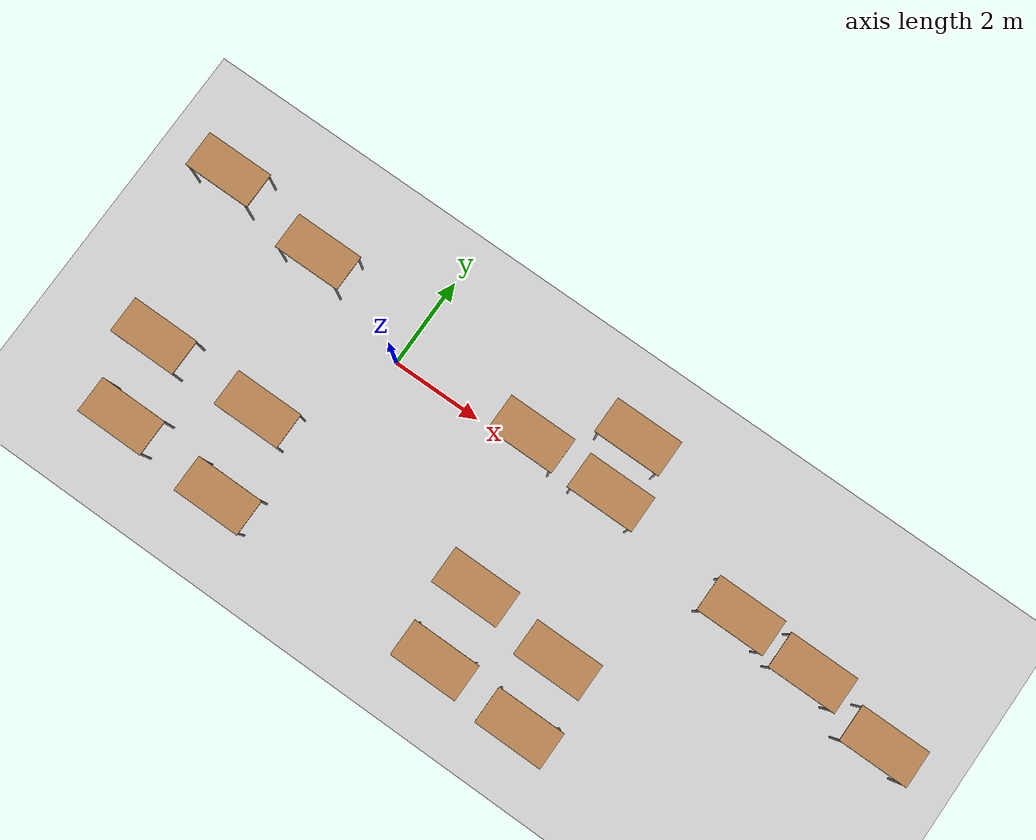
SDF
<sdf version="1.7">
 <world name="default">
  <model name="ground_plane">
   <static>1</static>
   <link name="link">
    <collision name="collision">
     <geometry><plane><normal>0 0 1</normal><size>100 100</size></plane></geometry>
     <surface>
      <contact><collide_bitmask>65535</collide_bitmask></contact>
      <friction><ode><mu>100</mu><mu2>50</mu2></ode></friction>
     </surface>
    </collision>
    <visual name="visual">
     <cast_shadows>0</cast_shadows>
     <geometry><plane><normal>0 0 1</normal><size>100 100</size></plane></geometry>
     <material>
      <script><uri>file://media/materials/scripts/gazebo.material</uri><name>Gazebo/Grey</name></script>
     </material>
    </visual>
   </link>
  </model>
  <model name="table">
   <static>1</static>
   <link name="link">
    <collision name="surface">
     <pose>0 0 1 0 -0 0</pose>
     <geometry><box><size>1.5 0.8 0.03</size></box></geometry>
     <surface><friction><ode><mu>0.6</mu><mu2>0.6</mu2></ode></friction></surface>
    </collision>
    <visual name="visual1">
     <pose>0 0 1 0 -0 0</pose>
     <geometry><box><size>1.5 0.8 0.03</size></box></geometry>
     <material>
      <script><uri>file://media/materials/scripts/gazebo.material</uri><name>Gazebo/Wood</name></script>
     </material>
    </visual>
    <collision name="front_left_leg">
     <pose>0.68 0.38 0.5 0 -0 0</pose>
     <geometry><cylinder><radius>0.02</radius><length>1</length></cylinder></geometry>
    </collision>
    <visual name="front_left_leg">
     <pose>0.68 0.38 0.5 0 -0 0</pose>
     <geometry><cylinder><radius>0.02</radius><length>1</length></cylinder></geometry>
     <material>
      <script><uri>file://media/materials/scripts/gazebo.material</uri><name>Gazebo/Grey</name></script>
     </material>
    </visual>
    <collision name="front_right_leg">
     <pose>0.68 -0.38 0.5 0 -0 0</pose>
     <geometry><cylinder><radius>0.02</radius><length>1</length></cylinder></geometry>
    </collision>
    <visual name="front_right_leg">
     <pose>0.68 -0.38 0.5 0 -0 0</pose>
     <geometry><cylinder><radius>0.02</radius><length>1</length></cylinder></geometry>
     <material>
      <script><uri>file://media/materials/scripts/gazebo.material</uri><name>Gazebo/Grey</name></script>
     </material>
    </visual>
    <collision name="back_right_leg">
     <pose>-0.68 -0.38 0.5 0 -0 0</pose>
     <geometry><cylinder><radius>0.02</radius><length>1</length></cylinder></geometry>
    </collision>
    <visual name="back_right_leg">
     <pose>-0.68 -0.38 0.5 0 -0 0</pose>
     <geometry><cylinder><radius>0.02</radius><length>1</length></cylinder></geometry>
     <material>
      <script><uri>file://media/materials/scripts/gazebo.material</uri><name>Gazebo/Grey</name></script>
     </material>
    </visual>
    <collision name="back_left_leg">
     <pose>-0.68 0.38 0.5 0 -0 0</pose>
     <geometry><cylinder><radius>0.02</radius><length>1</length></cylinder></geometry>
    </collision>
    <visual name="back_left_leg">
     <pose>-0.68 0.38 0.5 0 -0 0</pose>
     <geometry><cylinder><radius>0.02</radius><length>1</length></cylinder></geometry>
     <material>
      <script><uri>file://media/materials/scripts/gazebo.material</uri><name>Gazebo/Grey</name></script>
     </material>
    </visual>
   </link>
   <pose>3.92211 -2.73717 0 0 -0 0</pose>
  </model>
  <model name="table_clone">
   <static>1</static>
   <link name="link">
    <collision name="surface">
     <pose>0 0 1 0 -0 0</pose>
     <geometry><box><size>1.5 0.8 0.03</size></box></geometry>
     <surface><friction><ode><mu>0.6</mu><mu2>0.6</mu2></ode></friction></surface>
    </collision>
    <visual name="visual1">
     <pose>0 0 1 0 -0 0</pose>
     <geometry><box><size>1.5 0.8 0.03</size></box></geometry>
     <material>
      <script><uri>file://media/materials/scripts/gazebo.material</uri><name>Gazebo/Wood</name></script>
     </material>
    </visual>
    <collision name="front_left_leg">
     <pose>0.68 0.38 0.5 0 -0 0</pose>
     <geometry><cylinder><radius>0.02</radius><length>1</length></cylinder></geometry>
    </collision>
    <visual name="front_left_leg">
     <pose>0.68 0.38 0.5 0 -0 0</pose>
     <geometry><cylinder><radius>0.02</radius><length>1</length></cylinder></geometry>
     <material>
      <script><uri>file://media/materials/scripts/gazebo.material</uri><name>Gazebo/Grey</name></script>
     </material>
    </visual>
    <collision name="front_right_leg">
     <pose>0.68 -0.38 0.5 0 -0 0</pose>
     <geometry><cylinder><radius>0.02</radius><length>1</length></cylinder></geometry>
    </collision>
    <visual name="front_right_leg">
     <pose>0.68 -0.38 0.5 0 -0 0</pose>
     <geometry><cylinder><radius>0.02</radius><length>1</length></cylinder></geometry>
     <material>
      <script><uri>file://media/materials/scripts/gazebo.material</uri><name>Gazebo/Grey</name></script>
     </material>
    </visual>
    <collision name="back_right_leg">
     <pose>-0.68 -0.38 0.5 0 -0 0</pose>
     <geometry><cylinder><radius>0.02</radius><length>1</length></cylinder></geometry>
    </collision>
    <visual name="back_right_leg">
     <pose>-0.68 -0.38 0.5 0 -0 0</pose>
     <geometry><cylinder><radius>0.02</radius><length>1</length></cylinder></geometry>
     <material>
      <script><uri>file://media/materials/scripts/gazebo.material</uri><name>Gazebo/Grey</name></script>
     </material>
    </visual>
    <collision name="back_left_leg">
     <pose>-0.68 0.38 0.5 0 -0 0</pose>
     <geometry><cylinder><radius>0.02</radius><length>1</length></cylinder></geometry>
    </collision>
    <visual name="back_left_leg">
     <pose>-0.68 0.38 0.5 0 -0 0</pose>
     <geometry><cylinder><radius>0.02</radius><length>1</length></cylinder></geometry>
     <material>
      <script><uri>file://media/materials/scripts/gazebo.material</uri><name>Gazebo/Grey</name></script>
     </material>
    </visual>
   </link>
   <pose>5.97577 -2.95119 0 0 -0 0</pose>
  </model>
  <model name="table_clone_1">
   <static>1</static>
   <link name="link">
    <collision name="surface">
     <pose>0 0 1 0 -0 0</pose>
     <geometry><box><size>1.5 0.8 0.03</size></box></geometry>
     <surface><friction><ode><mu>0.6</mu><mu2>0.6</mu2></ode></friction></surface>
    </collision>
    <visual name="visual1">
     <pose>0 0 1 0 -0 0</pose>
     <geometry><box><size>1.5 0.8 0.03</size></box></geometry>
     <material>
      <script><uri>file://media/materials/scripts/gazebo.material</uri><name>Gazebo/Wood</name></script>
     </material>
    </visual>
    <collision name="front_left_leg">
     <pose>0.68 0.38 0.5 0 -0 0</pose>
     <geometry><cylinder><radius>0.02</radius><length>1</length></cylinder></geometry>
    </collision>
    <visual name="front_left_leg">
     <pose>0.68 0.38 0.5 0 -0 0</pose>
     <geometry><cylinder><radius>0.02</radius><length>1</length></cylinder></geometry>
     <material>
      <script><uri>file://media/materials/scripts/gazebo.material</uri><name>Gazebo/Grey</name></script>
     </material>
    </visual>
    <collision name="front_right_leg">
     <pose>0.68 -0.38 0.5 0 -0 0</pose>
     <geometry><cylinder><radius>0.02</radius><length>1</length></cylinder></geometry>
    </collision>
    <visual name="front_right_leg">
     <pose>0.68 -0.38 0.5 0 -0 0</pose>
     <geometry><cylinder><radius>0.02</radius><length>1</length></cylinder></geometry>
     <material>
      <script><uri>file://media/materials/scripts/gazebo.material</uri><name>Gazebo/Grey</name></script>
     </material>
    </visual>
    <collision name="back_right_leg">
     <pose>-0.68 -0.38 0.5 0 -0 0</pose>
     <geometry><cylinder><radius>0.02</radius><length>1</length></cylinder></geometry>
    </collision>
    <visual name="back_right_leg">
     <pose>-0.68 -0.38 0.5 0 -0 0</pose>
     <geometry><cylinder><radius>0.02</radius><length>1</length></cylinder></geometry>
     <material>
      <script><uri>file://media/materials/scripts/gazebo.material</uri><name>Gazebo/Grey</name></script>
     </material>
    </visual>
    <collision name="back_left_leg">
     <pose>-0.68 0.38 0.5 0 -0 0</pose>
     <geometry><cylinder><radius>0.02</radius><length>1</length></cylinder></geometry>
    </collision>
    <visual name="back_left_leg">
     <pose>-0.68 0.38 0.5 0 -0 0</pose>
     <geometry><cylinder><radius>0.02</radius><length>1</length></cylinder></geometry>
     <material>
      <script><uri>file://media/materials/scripts/gazebo.material</uri><name>Gazebo/Grey</name></script>
     </material>
    </visual>
   </link>
   <pose>6.11176 -4.39792 0 0 -0 0</pose>
  </model>
  <model name="table_clone_2">
   <static>1</static>
   <link name="link">
    <collision name="surface">
     <pose>0 0 1 0 -0 0</pose>
     <geometry><box><size>1.5 0.8 0.03</size></box></geometry>
     <surface><friction><ode><mu>0.6</mu><mu2>0.6</mu2></ode></friction></surface>
    </collision>
    <visual name="visual1">
     <pose>0 0 1 0 -0 0</pose>
     <geometry><box><size>1.5 0.8 0.03</size></box></geometry>
     <material>
      <script><uri>file://media/materials/scripts/gazebo.material</uri><name>Gazebo/Wood</name></script>
     </material>
    </visual>
    <collision name="front_left_leg">
     <pose>0.68 0.38 0.5 0 -0 0</pose>
     <geometry><cylinder><radius>0.02</radius><length>1</length></cylinder></geometry>
    </collision>
    <visual name="front_left_leg">
     <pose>0.68 0.38 0.5 0 -0 0</pose>
     <geometry><cylinder><radius>0.02</radius><length>1</length></cylinder></geometry>
     <material>
      <script><uri>file://media/materials/scripts/gazebo.material</uri><name>Gazebo/Grey</name></script>
     </material>
    </visual>
    <collision name="front_right_leg">
     <pose>0.68 -0.38 0.5 0 -0 0</pose>
     <geometry><cylinder><radius>0.02</radius><length>1</length></cylinder></geometry>
    </collision>
    <visual name="front_right_leg">
     <pose>0.68 -0.38 0.5 0 -0 0</pose>
     <geometry><cylinder><radius>0.02</radius><length>1</length></cylinder></geometry>
     <material>
      <script><uri>file://media/materials/scripts/gazebo.material</uri><name>Gazebo/Grey</name></script>
     </material>
    </visual>
    <collision name="back_right_leg">
     <pose>-0.68 -0.38 0.5 0 -0 0</pose>
     <geometry><cylinder><radius>0.02</radius><length>1</length></cylinder></geometry>
    </collision>
    <visual name="back_right_leg">
     <pose>-0.68 -0.38 0.5 0 -0 0</pose>
     <geometry><cylinder><radius>0.02</radius><length>1</length></cylinder></geometry>
     <material>
      <script><uri>file://media/materials/scripts/gazebo.material</uri><name>Gazebo/Grey</name></script>
     </material>
    </visual>
    <collision name="back_left_leg">
     <pose>-0.68 0.38 0.5 0 -0 0</pose>
     <geometry><cylinder><radius>0.02</radius><length>1</length></cylinder></geometry>
    </collision>
    <visual name="back_left_leg">
     <pose>-0.68 0.38 0.5 0 -0 0</pose>
     <geometry><cylinder><radius>0.02</radius><length>1</length></cylinder></geometry>
     <material>
      <script><uri>file://media/materials/scripts/gazebo.material</uri><name>Gazebo/Grey</name></script>
     </material>
    </visual>
   </link>
   <pose>-1.48 -2.39226 0 0 -0 0</pose>
  </model>
  <model name="table_clone_3">
   <static>1</static>
   <link name="link">
    <collision name="surface">
     <pose>0 0 1 0 -0 0</pose>
     <geometry><box><size>1.5 0.8 0.03</size></box></geometry>
     <surface><friction><ode><mu>0.6</mu><mu2>0.6</mu2></ode></friction></surface>
    </collision>
    <visual name="visual1">
     <pose>0 0 1 0 -0 0</pose>
     <geometry><box><size>1.5 0.8 0.03</size></box></geometry>
     <material>
      <script><uri>file://media/materials/scripts/gazebo.material</uri><name>Gazebo/Wood</name></script>
     </material>
    </visual>
    <collision name="front_left_leg">
     <pose>0.68 0.38 0.5 0 -0 0</pose>
     <geometry><cylinder><radius>0.02</radius><length>1</length></cylinder></geometry>
    </collision>
    <visual name="front_left_leg">
     <pose>0.68 0.38 0.5 0 -0 0</pose>
     <geometry><cylinder><radius>0.02</radius><length>1</length></cylinder></geometry>
     <material>
      <script><uri>file://media/materials/scripts/gazebo.material</uri><name>Gazebo/Grey</name></script>
     </material>
    </visual>
    <collision name="front_right_leg">
     <pose>0.68 -0.38 0.5 0 -0 0</pose>
     <geometry><cylinder><radius>0.02</radius><length>1</length></cylinder></geometry>
    </collision>
    <visual name="front_right_leg">
     <pose>0.68 -0.38 0.5 0 -0 0</pose>
     <geometry><cylinder><radius>0.02</radius><length>1</length></cylinder></geometry>
     <material>
      <script><uri>file://media/materials/scripts/gazebo.material</uri><name>Gazebo/Grey</name></script>
     </material>
    </visual>
    <collision name="back_right_leg">
     <pose>-0.68 -0.38 0.5 0 -0 0</pose>
     <geometry><cylinder><radius>0.02</radius><length>1</length></cylinder></geometry>
    </collision>
    <visual name="back_right_leg">
     <pose>-0.68 -0.38 0.5 0 -0 0</pose>
     <geometry><cylinder><radius>0.02</radius><length>1</length></cylinder></geometry>
     <material>
      <script><uri>file://media/materials/scripts/gazebo.material</uri><name>Gazebo/Grey</name></script>
     </material>
    </visual>
    <collision name="back_left_leg">
     <pose>-0.68 0.38 0.5 0 -0 0</pose>
     <geometry><cylinder><radius>0.02</radius><length>1</length></cylinder></geometry>
    </collision>
    <visual name="back_left_leg">
     <pose>-0.68 0.38 0.5 0 -0 0</pose>
     <geometry><cylinder><radius>0.02</radius><length>1</length></cylinder></geometry>
     <material>
      <script><uri>file://media/materials/scripts/gazebo.material</uri><name>Gazebo/Grey</name></script>
     </material>
    </visual>
   </link>
   <pose>-3.97626 -2.40472 0 0 -0 0</pose>
  </model>
  <model name="table_clone_4">
   <static>1</static>
   <link name="link">
    <collision name="surface">
     <pose>0 0 1 0 -0 0</pose>
     <geometry><box><size>1.5 0.8 0.03</size></box></geometry>
     <surface><friction><ode><mu>0.6</mu><mu2>0.6</mu2></ode></friction></surface>
    </collision>
    <visual name="visual1">
     <pose>0 0 1 0 -0 0</pose>
     <geometry><box><size>1.5 0.8 0.03</size></box></geometry>
     <material>
      <script><uri>file://media/materials/scripts/gazebo.material</uri><name>Gazebo/Wood</name></script>
     </material>
    </visual>
    <collision name="front_left_leg">
     <pose>0.68 0.38 0.5 0 -0 0</pose>
     <geometry><cylinder><radius>0.02</radius><length>1</length></cylinder></geometry>
    </collision>
    <visual name="front_left_leg">
     <pose>0.68 0.38 0.5 0 -0 0</pose>
     <geometry><cylinder><radius>0.02</radius><length>1</length></cylinder></geometry>
     <material>
      <script><uri>file://media/materials/scripts/gazebo.material</uri><name>Gazebo/Grey</name></script>
     </material>
    </visual>
    <collision name="front_right_leg">
     <pose>0.68 -0.38 0.5 0 -0 0</pose>
     <geometry><cylinder><radius>0.02</radius><length>1</length></cylinder></geometry>
    </collision>
    <visual name="front_right_leg">
     <pose>0.68 -0.38 0.5 0 -0 0</pose>
     <geometry><cylinder><radius>0.02</radius><length>1</length></cylinder></geometry>
     <material>
      <script><uri>file://media/materials/scripts/gazebo.material</uri><name>Gazebo/Grey</name></script>
     </material>
    </visual>
    <collision name="back_right_leg">
     <pose>-0.68 -0.38 0.5 0 -0 0</pose>
     <geometry><cylinder><radius>0.02</radius><length>1</length></cylinder></geometry>
    </collision>
    <visual name="back_right_leg">
     <pose>-0.68 -0.38 0.5 0 -0 0</pose>
     <geometry><cylinder><radius>0.02</radius><length>1</length></cylinder></geometry>
     <material>
      <script><uri>file://media/materials/scripts/gazebo.material</uri><name>Gazebo/Grey</name></script>
     </material>
    </visual>
    <collision name="back_left_leg">
     <pose>-0.68 0.38 0.5 0 -0 0</pose>
     <geometry><cylinder><radius>0.02</radius><length>1</length></cylinder></geometry>
    </collision>
    <visual name="back_left_leg">
     <pose>-0.68 0.38 0.5 0 -0 0</pose>
     <geometry><cylinder><radius>0.02</radius><length>1</length></cylinder></geometry>
     <material>
      <script><uri>file://media/materials/scripts/gazebo.material</uri><name>Gazebo/Grey</name></script>
     </material>
    </visual>
   </link>
   <pose>-3.53618 -4.01867 0 0 -0 0</pose>
  </model>
  <model name="table_clone_5">
   <static>1</static>
   <link name="link">
    <collision name="surface">
     <pose>0 0 1 0 -0 0</pose>
     <geometry><box><size>1.5 0.8 0.03</size></box></geometry>
     <surface><friction><ode><mu>0.6</mu><mu2>0.6</mu2></ode></friction></surface>
    </collision>
    <visual name="visual1">
     <pose>0 0 1 0 -0 0</pose>
     <geometry><box><size>1.5 0.8 0.03</size></box></geometry>
     <material>
      <script><uri>file://media/materials/scripts/gazebo.material</uri><name>Gazebo/Wood</name></script>
     </material>
    </visual>
    <collision name="front_left_leg">
     <pose>0.68 0.38 0.5 0 -0 0</pose>
     <geometry><cylinder><radius>0.02</radius><length>1</length></cylinder></geometry>
    </collision>
    <visual name="front_left_leg">
     <pose>0.68 0.38 0.5 0 -0 0</pose>
     <geometry><cylinder><radius>0.02</radius><length>1</length></cylinder></geometry>
     <material>
      <script><uri>file://media/materials/scripts/gazebo.material</uri><name>Gazebo/Grey</name></script>
     </material>
    </visual>
    <collision name="front_right_leg">
     <pose>0.68 -0.38 0.5 0 -0 0</pose>
     <geometry><cylinder><radius>0.02</radius><length>1</length></cylinder></geometry>
    </collision>
    <visual name="front_right_leg">
     <pose>0.68 -0.38 0.5 0 -0 0</pose>
     <geometry><cylinder><radius>0.02</radius><length>1</length></cylinder></geometry>
     <material>
      <script><uri>file://media/materials/scripts/gazebo.material</uri><name>Gazebo/Grey</name></script>
     </material>
    </visual>
    <collision name="back_right_leg">
     <pose>-0.68 -0.38 0.5 0 -0 0</pose>
     <geometry><cylinder><radius>0.02</radius><length>1</length></cylinder></geometry>
    </collision>
    <visual name="back_right_leg">
     <pose>-0.68 -0.38 0.5 0 -0 0</pose>
     <geometry><cylinder><radius>0.02</radius><length>1</length></cylinder></geometry>
     <material>
      <script><uri>file://media/materials/scripts/gazebo.material</uri><name>Gazebo/Grey</name></script>
     </material>
    </visual>
    <collision name="back_left_leg">
     <pose>-0.68 0.38 0.5 0 -0 0</pose>
     <geometry><cylinder><radius>0.02</radius><length>1</length></cylinder></geometry>
    </collision>
    <visual name="back_left_leg">
     <pose>-0.68 0.38 0.5 0 -0 0</pose>
     <geometry><cylinder><radius>0.02</radius><length>1</length></cylinder></geometry>
     <material>
      <script><uri>file://media/materials/scripts/gazebo.material</uri><name>Gazebo/Grey</name></script>
     </material>
    </visual>
   </link>
   <pose>-1.10425 -4.17106 0 0 -0 0</pose>
  </model>
  <model name="table_clone_6">
   <static>1</static>
   <link name="link">
    <collision name="surface">
     <pose>0 0 1 0 -0 0</pose>
     <geometry><box><size>1.5 0.8 0.03</size></box></geometry>
     <surface><friction><ode><mu>0.6</mu><mu2>0.6</mu2></ode></friction></surface>
    </collision>
    <visual name="visual1">
     <pose>0 0 1 0 -0 0</pose>
     <geometry><box><size>1.5 0.8 0.03</size></box></geometry>
     <material>
      <script><uri>file://media/materials/scripts/gazebo.material</uri><name>Gazebo/Wood</name></script>
     </material>
    </visual>
    <collision name="front_left_leg">
     <pose>0.68 0.38 0.5 0 -0 0</pose>
     <geometry><cylinder><radius>0.02</radius><length>1</length></cylinder></geometry>
    </collision>
    <visual name="front_left_leg">
     <pose>0.68 0.38 0.5 0 -0 0</pose>
     <geometry><cylinder><radius>0.02</radius><length>1</length></cylinder></geometry>
     <material>
      <script><uri>file://media/materials/scripts/gazebo.material</uri><name>Gazebo/Grey</name></script>
     </material>
    </visual>
    <collision name="front_right_leg">
     <pose>0.68 -0.38 0.5 0 -0 0</pose>
     <geometry><cylinder><radius>0.02</radius><length>1</length></cylinder></geometry>
    </collision>
    <visual name="front_right_leg">
     <pose>0.68 -0.38 0.5 0 -0 0</pose>
     <geometry><cylinder><radius>0.02</radius><length>1</length></cylinder></geometry>
     <material>
      <script><uri>file://media/materials/scripts/gazebo.material</uri><name>Gazebo/Grey</name></script>
     </material>
    </visual>
    <collision name="back_right_leg">
     <pose>-0.68 -0.38 0.5 0 -0 0</pose>
     <geometry><cylinder><radius>0.02</radius><length>1</length></cylinder></geometry>
    </collision>
    <visual name="back_right_leg">
     <pose>-0.68 -0.38 0.5 0 -0 0</pose>
     <geometry><cylinder><radius>0.02</radius><length>1</length></cylinder></geometry>
     <material>
      <script><uri>file://media/materials/scripts/gazebo.material</uri><name>Gazebo/Grey</name></script>
     </material>
    </visual>
    <collision name="back_left_leg">
     <pose>-0.68 0.38 0.5 0 -0 0</pose>
     <geometry><cylinder><radius>0.02</radius><length>1</length></cylinder></geometry>
    </collision>
    <visual name="back_left_leg">
     <pose>-0.68 0.38 0.5 0 -0 0</pose>
     <geometry><cylinder><radius>0.02</radius><length>1</length></cylinder></geometry>
     <material>
      <script><uri>file://media/materials/scripts/gazebo.material</uri><name>Gazebo/Grey</name></script>
     </material>
    </visual>
   </link>
   <pose>-4.7921 1.09952 0 0 -0 0</pose>
  </model>
  <model name="table_clone_7">
   <static>1</static>
   <link name="link">
    <collision name="surface">
     <pose>0 0 1 0 -0 0</pose>
     <geometry><box><size>1.5 0.8 0.03</size></box></geometry>
     <surface><friction><ode><mu>0.6</mu><mu2>0.6</mu2></ode></friction></surface>
    </collision>
    <visual name="visual1">
     <pose>0 0 1 0 -0 0</pose>
     <geometry><box><size>1.5 0.8 0.03</size></box></geometry>
     <material>
      <script><uri>file://media/materials/scripts/gazebo.material</uri><name>Gazebo/Wood</name></script>
     </material>
    </visual>
    <collision name="front_left_leg">
     <pose>0.68 0.38 0.5 0 -0 0</pose>
     <geometry><cylinder><radius>0.02</radius><length>1</length></cylinder></geometry>
    </collision>
    <visual name="front_left_leg">
     <pose>0.68 0.38 0.5 0 -0 0</pose>
     <geometry><cylinder><radius>0.02</radius><length>1</length></cylinder></geometry>
     <material>
      <script><uri>file://media/materials/scripts/gazebo.material</uri><name>Gazebo/Grey</name></script>
     </material>
    </visual>
    <collision name="front_right_leg">
     <pose>0.68 -0.38 0.5 0 -0 0</pose>
     <geometry><cylinder><radius>0.02</radius><length>1</length></cylinder></geometry>
    </collision>
    <visual name="front_right_leg">
     <pose>0.68 -0.38 0.5 0 -0 0</pose>
     <geometry><cylinder><radius>0.02</radius><length>1</length></cylinder></geometry>
     <material>
      <script><uri>file://media/materials/scripts/gazebo.material</uri><name>Gazebo/Grey</name></script>
     </material>
    </visual>
    <collision name="back_right_leg">
     <pose>-0.68 -0.38 0.5 0 -0 0</pose>
     <geometry><cylinder><radius>0.02</radius><length>1</length></cylinder></geometry>
    </collision>
    <visual name="back_right_leg">
     <pose>-0.68 -0.38 0.5 0 -0 0</pose>
     <geometry><cylinder><radius>0.02</radius><length>1</length></cylinder></geometry>
     <material>
      <script><uri>file://media/materials/scripts/gazebo.material</uri><name>Gazebo/Grey</name></script>
     </material>
    </visual>
    <collision name="back_left_leg">
     <pose>-0.68 0.38 0.5 0 -0 0</pose>
     <geometry><cylinder><radius>0.02</radius><length>1</length></cylinder></geometry>
    </collision>
    <visual name="back_left_leg">
     <pose>-0.68 0.38 0.5 0 -0 0</pose>
     <geometry><cylinder><radius>0.02</radius><length>1</length></cylinder></geometry>
     <material>
      <script><uri>file://media/materials/scripts/gazebo.material</uri><name>Gazebo/Grey</name></script>
     </material>
    </visual>
   </link>
   <pose>-2.37165 0.786357 0 0 -0 0</pose>
  </model>
  <model name="table_clone_10">
   <static>1</static>
   <link name="link">
    <collision name="surface">
     <pose>0 0 1 0 -0 0</pose>
     <geometry><box><size>1.5 0.8 0.03</size></box></geometry>
     <surface><friction><ode><mu>0.6</mu><mu2>0.6</mu2></ode></friction></surface>
    </collision>
    <visual name="visual1">
     <pose>0 0 1 0 -0 0</pose>
     <geometry><box><size>1.5 0.8 0.03</size></box></geometry>
     <material>
      <script><uri>file://media/materials/scripts/gazebo.material</uri><name>Gazebo/Wood</name></script>
     </material>
    </visual>
    <collision name="front_left_leg">
     <pose>0.68 0.38 0.5 0 -0 0</pose>
     <geometry><cylinder><radius>0.02</radius><length>1</length></cylinder></geometry>
    </collision>
    <visual name="front_left_leg">
     <pose>0.68 0.38 0.5 0 -0 0</pose>
     <geometry><cylinder><radius>0.02</radius><length>1</length></cylinder></geometry>
     <material>
      <script><uri>file://media/materials/scripts/gazebo.material</uri><name>Gazebo/Grey</name></script>
     </material>
    </visual>
    <collision name="front_right_leg">
     <pose>0.68 -0.38 0.5 0 -0 0</pose>
     <geometry><cylinder><radius>0.02</radius><length>1</length></cylinder></geometry>
    </collision>
    <visual name="front_right_leg">
     <pose>0.68 -0.38 0.5 0 -0 0</pose>
     <geometry><cylinder><radius>0.02</radius><length>1</length></cylinder></geometry>
     <material>
      <script><uri>file://media/materials/scripts/gazebo.material</uri><name>Gazebo/Grey</name></script>
     </material>
    </visual>
    <collision name="back_right_leg">
     <pose>-0.68 -0.38 0.5 0 -0 0</pose>
     <geometry><cylinder><radius>0.02</radius><length>1</length></cylinder></geometry>
    </collision>
    <visual name="back_right_leg">
     <pose>-0.68 -0.38 0.5 0 -0 0</pose>
     <geometry><cylinder><radius>0.02</radius><length>1</length></cylinder></geometry>
     <material>
      <script><uri>file://media/materials/scripts/gazebo.material</uri><name>Gazebo/Grey</name></script>
     </material>
    </visual>
    <collision name="back_left_leg">
     <pose>-0.68 0.38 0.5 0 -0 0</pose>
     <geometry><cylinder><radius>0.02</radius><length>1</length></cylinder></geometry>
    </collision>
    <visual name="back_left_leg">
     <pose>-0.68 0.38 0.5 0 -0 0</pose>
     <geometry><cylinder><radius>0.02</radius><length>1</length></cylinder></geometry>
     <material>
      <script><uri>file://media/materials/scripts/gazebo.material</uri><name>Gazebo/Grey</name></script>
     </material>
    </visual>
   </link>
   <pose>3.09567 0.266723 0 0 -0 0</pose>
  </model>
  <model name="table_clone_11">
   <static>1</static>
   <link name="link">
    <collision name="surface">
     <pose>0 0 1 0 -0 0</pose>
     <geometry><box><size>1.5 0.8 0.03</size></box></geometry>
     <surface><friction><ode><mu>0.6</mu><mu2>0.6</mu2></ode></friction></surface>
    </collision>
    <visual name="visual1">
     <pose>0 0 1 0 -0 0</pose>
     <geometry><box><size>1.5 0.8 0.03</size></box></geometry>
     <material>
      <script><uri>file://media/materials/scripts/gazebo.material</uri><name>Gazebo/Wood</name></script>
     </material>
    </visual>
    <collision name="front_left_leg">
     <pose>0.68 0.38 0.5 0 -0 0</pose>
     <geometry><cylinder><radius>0.02</radius><length>1</length></cylinder></geometry>
    </collision>
    <visual name="front_left_leg">
     <pose>0.68 0.38 0.5 0 -0 0</pose>
     <geometry><cylinder><radius>0.02</radius><length>1</length></cylinder></geometry>
     <material>
      <script><uri>file://media/materials/scripts/gazebo.material</uri><name>Gazebo/Grey</name></script>
     </material>
    </visual>
    <collision name="front_right_leg">
     <pose>0.68 -0.38 0.5 0 -0 0</pose>
     <geometry><cylinder><radius>0.02</radius><length>1</length></cylinder></geometry>
    </collision>
    <visual name="front_right_leg">
     <pose>0.68 -0.38 0.5 0 -0 0</pose>
     <geometry><cylinder><radius>0.02</radius><length>1</length></cylinder></geometry>
     <material>
      <script><uri>file://media/materials/scripts/gazebo.material</uri><name>Gazebo/Grey</name></script>
     </material>
    </visual>
    <collision name="back_right_leg">
     <pose>-0.68 -0.38 0.5 0 -0 0</pose>
     <geometry><cylinder><radius>0.02</radius><length>1</length></cylinder></geometry>
    </collision>
    <visual name="back_right_leg">
     <pose>-0.68 -0.38 0.5 0 -0 0</pose>
     <geometry><cylinder><radius>0.02</radius><length>1</length></cylinder></geometry>
     <material>
      <script><uri>file://media/materials/scripts/gazebo.material</uri><name>Gazebo/Grey</name></script>
     </material>
    </visual>
    <collision name="back_left_leg">
     <pose>-0.68 0.38 0.5 0 -0 0</pose>
     <geometry><cylinder><radius>0.02</radius><length>1</length></cylinder></geometry>
    </collision>
    <visual name="back_left_leg">
     <pose>-0.68 0.38 0.5 0 -0 0</pose>
     <geometry><cylinder><radius>0.02</radius><length>1</length></cylinder></geometry>
     <material>
      <script><uri>file://media/materials/scripts/gazebo.material</uri><name>Gazebo/Grey</name></script>
     </material>
    </visual>
   </link>
   <pose>4.98145 0.226839 0 0 -0 0</pose>
  </model>
  <model name="table_clone_13">
   <static>1</static>
   <link name="link">
    <collision name="surface">
     <pose>0 0 1 0 -0 0</pose>
     <geometry><box><size>1.5 0.8 0.03</size></box></geometry>
     <surface><friction><ode><mu>0.6</mu><mu2>0.6</mu2></ode></friction></surface>
    </collision>
    <visual name="visual1">
     <pose>0 0 1 0 -0 0</pose>
     <geometry><box><size>1.5 0.8 0.03</size></box></geometry>
     <material>
      <script><uri>file://media/materials/scripts/gazebo.material</uri><name>Gazebo/Wood</name></script>
     </material>
    </visual>
    <collision name="front_left_leg">
     <pose>0.68 0.38 0.5 0 -0 0</pose>
     <geometry><cylinder><radius>0.02</radius><length>1</length></cylinder></geometry>
    </collision>
    <visual name="front_left_leg">
     <pose>0.68 0.38 0.5 0 -0 0</pose>
     <geometry><cylinder><radius>0.02</radius><length>1</length></cylinder></geometry>
     <material>
      <script><uri>file://media/materials/scripts/gazebo.material</uri><name>Gazebo/Grey</name></script>
     </material>
    </visual>
    <collision name="front_right_leg">
     <pose>0.68 -0.38 0.5 0 -0 0</pose>
     <geometry><cylinder><radius>0.02</radius><length>1</length></cylinder></geometry>
    </collision>
    <visual name="front_right_leg">
     <pose>0.68 -0.38 0.5 0 -0 0</pose>
     <geometry><cylinder><radius>0.02</radius><length>1</length></cylinder></geometry>
     <material>
      <script><uri>file://media/materials/scripts/gazebo.material</uri><name>Gazebo/Grey</name></script>
     </material>
    </visual>
    <collision name="back_right_leg">
     <pose>-0.68 -0.38 0.5 0 -0 0</pose>
     <geometry><cylinder><radius>0.02</radius><length>1</length></cylinder></geometry>
    </collision>
    <visual name="back_right_leg">
     <pose>-0.68 -0.38 0.5 0 -0 0</pose>
     <geometry><cylinder><radius>0.02</radius><length>1</length></cylinder></geometry>
     <material>
      <script><uri>file://media/materials/scripts/gazebo.material</uri><name>Gazebo/Grey</name></script>
     </material>
    </visual>
    <collision name="back_left_leg">
     <pose>-0.68 0.38 0.5 0 -0 0</pose>
     <geometry><cylinder><radius>0.02</radius><length>1</length></cylinder></geometry>
    </collision>
    <visual name="back_left_leg">
     <pose>-0.68 0.38 0.5 0 -0 0</pose>
     <geometry><cylinder><radius>0.02</radius><length>1</length></cylinder></geometry>
     <material>
      <script><uri>file://media/materials/scripts/gazebo.material</uri><name>Gazebo/Grey</name></script>
     </material>
    </visual>
   </link>
   <pose>4.79787 1.40687 0 0 -0 0</pose>
  </model>
  <model name="table_clone_14">
   <static>1</static>
   <link name="link">
    <collision name="surface">
     <pose>0 0 1 0 -0 0</pose>
     <geometry><box><size>1.5 0.8 0.03</size></box></geometry>
     <surface><friction><ode><mu>0.6</mu><mu2>0.6</mu2></ode></friction></surface>
    </collision>
    <visual name="visual1">
     <pose>0 0 1 0 -0 0</pose>
     <geometry><box><size>1.5 0.8 0.03</size></box></geometry>
     <material>
      <script><uri>file://media/materials/scripts/gazebo.material</uri><name>Gazebo/Wood</name></script>
     </material>
    </visual>
    <collision name="front_left_leg">
     <pose>0.68 0.38 0.5 0 -0 0</pose>
     <geometry><cylinder><radius>0.02</radius><length>1</length></cylinder></geometry>
    </collision>
    <visual name="front_left_leg">
     <pose>0.68 0.38 0.5 0 -0 0</pose>
     <geometry><cylinder><radius>0.02</radius><length>1</length></cylinder></geometry>
     <material>
      <script><uri>file://media/materials/scripts/gazebo.material</uri><name>Gazebo/Grey</name></script>
     </material>
    </visual>
    <collision name="front_right_leg">
     <pose>0.68 -0.38 0.5 0 -0 0</pose>
     <geometry><cylinder><radius>0.02</radius><length>1</length></cylinder></geometry>
    </collision>
    <visual name="front_right_leg">
     <pose>0.68 -0.38 0.5 0 -0 0</pose>
     <geometry><cylinder><radius>0.02</radius><length>1</length></cylinder></geometry>
     <material>
      <script><uri>file://media/materials/scripts/gazebo.material</uri><name>Gazebo/Grey</name></script>
     </material>
    </visual>
    <collision name="back_right_leg">
     <pose>-0.68 -0.38 0.5 0 -0 0</pose>
     <geometry><cylinder><radius>0.02</radius><length>1</length></cylinder></geometry>
    </collision>
    <visual name="back_right_leg">
     <pose>-0.68 -0.38 0.5 0 -0 0</pose>
     <geometry><cylinder><radius>0.02</radius><length>1</length></cylinder></geometry>
     <material>
      <script><uri>file://media/materials/scripts/gazebo.material</uri><name>Gazebo/Grey</name></script>
     </material>
    </visual>
    <collision name="back_left_leg">
     <pose>-0.68 0.38 0.5 0 -0 0</pose>
     <geometry><cylinder><radius>0.02</radius><length>1</length></cylinder></geometry>
    </collision>
    <visual name="back_left_leg">
     <pose>-0.68 0.38 0.5 0 -0 0</pose>
     <geometry><cylinder><radius>0.02</radius><length>1</length></cylinder></geometry>
     <material>
      <script><uri>file://media/materials/scripts/gazebo.material</uri><name>Gazebo/Grey</name></script>
     </material>
    </visual>
   </link>
   <pose>8.32381 -0.263564 0 0 -0 0</pose>
  </model>
  <model name="table_clone_15">
   <static>1</static>
   <link name="link">
    <collision name="surface">
     <pose>0 0 1 0 -0 0</pose>
     <geometry><box><size>1.5 0.8 0.03</size></box></geometry>
     <surface><friction><ode><mu>0.6</mu><mu2>0.6</mu2></ode></friction></surface>
    </collision>
    <visual name="visual1">
     <pose>0 0 1 0 -0 0</pose>
     <geometry><box><size>1.5 0.8 0.03</size></box></geometry>
     <material>
      <script><uri>file://media/materials/scripts/gazebo.material</uri><name>Gazebo/Wood</name></script>
     </material>
    </visual>
    <collision name="front_left_leg">
     <pose>0.68 0.38 0.5 0 -0 0</pose>
     <geometry><cylinder><radius>0.02</radius><length>1</length></cylinder></geometry>
    </collision>
    <visual name="front_left_leg">
     <pose>0.68 0.38 0.5 0 -0 0</pose>
     <geometry><cylinder><radius>0.02</radius><length>1</length></cylinder></geometry>
     <material>
      <script><uri>file://media/materials/scripts/gazebo.material</uri><name>Gazebo/Grey</name></script>
     </material>
    </visual>
    <collision name="front_right_leg">
     <pose>0.68 -0.38 0.5 0 -0 0</pose>
     <geometry><cylinder><radius>0.02</radius><length>1</length></cylinder></geometry>
    </collision>
    <visual name="front_right_leg">
     <pose>0.68 -0.38 0.5 0 -0 0</pose>
     <geometry><cylinder><radius>0.02</radius><length>1</length></cylinder></geometry>
     <material>
      <script><uri>file://media/materials/scripts/gazebo.material</uri><name>Gazebo/Grey</name></script>
     </material>
    </visual>
    <collision name="back_right_leg">
     <pose>-0.68 -0.38 0.5 0 -0 0</pose>
     <geometry><cylinder><radius>0.02</radius><length>1</length></cylinder></geometry>
    </collision>
    <visual name="back_right_leg">
     <pose>-0.68 -0.38 0.5 0 -0 0</pose>
     <geometry><cylinder><radius>0.02</radius><length>1</length></cylinder></geometry>
     <material>
      <script><uri>file://media/materials/scripts/gazebo.material</uri><name>Gazebo/Grey</name></script>
     </material>
    </visual>
    <collision name="back_left_leg">
     <pose>-0.68 0.38 0.5 0 -0 0</pose>
     <geometry><cylinder><radius>0.02</radius><length>1</length></cylinder></geometry>
    </collision>
    <visual name="back_left_leg">
     <pose>-0.68 0.38 0.5 0 -0 0</pose>
     <geometry><cylinder><radius>0.02</radius><length>1</length></cylinder></geometry>
     <material>
      <script><uri>file://media/materials/scripts/gazebo.material</uri><name>Gazebo/Grey</name></script>
     </material>
    </visual>
   </link>
   <pose>10.0224 -0.37087 0 0 -0 0</pose>
  </model>
  <model name="table_clone_16">
   <static>1</static>
   <link name="link">
    <collision name="surface">
     <pose>0 0 1 0 -0 0</pose>
     <geometry><box><size>1.5 0.8 0.03</size></box></geometry>
     <surface><friction><ode><mu>0.6</mu><mu2>0.6</mu2></ode></friction></surface>
    </collision>
    <visual name="visual1">
     <pose>0 0 1 0 -0 0</pose>
     <geometry><box><size>1.5 0.8 0.03</size></box></geometry>
     <material>
      <script><uri>file://media/materials/scripts/gazebo.material</uri><name>Gazebo/Wood</name></script>
     </material>
    </visual>
    <collision name="front_left_leg">
     <pose>0.68 0.38 0.5 0 -0 0</pose>
     <geometry><cylinder><radius>0.02</radius><length>1</length></cylinder></geometry>
    </collision>
    <visual name="front_left_leg">
     <pose>0.68 0.38 0.5 0 -0 0</pose>
     <geometry><cylinder><radius>0.02</radius><length>1</length></cylinder></geometry>
     <material>
      <script><uri>file://media/materials/scripts/gazebo.material</uri><name>Gazebo/Grey</name></script>
     </material>
    </visual>
    <collision name="front_right_leg">
     <pose>0.68 -0.38 0.5 0 -0 0</pose>
     <geometry><cylinder><radius>0.02</radius><length>1</length></cylinder></geometry>
    </collision>
    <visual name="front_right_leg">
     <pose>0.68 -0.38 0.5 0 -0 0</pose>
     <geometry><cylinder><radius>0.02</radius><length>1</length></cylinder></geometry>
     <material>
      <script><uri>file://media/materials/scripts/gazebo.material</uri><name>Gazebo/Grey</name></script>
     </material>
    </visual>
    <collision name="back_right_leg">
     <pose>-0.68 -0.38 0.5 0 -0 0</pose>
     <geometry><cylinder><radius>0.02</radius><length>1</length></cylinder></geometry>
    </collision>
    <visual name="back_right_leg">
     <pose>-0.68 -0.38 0.5 0 -0 0</pose>
     <geometry><cylinder><radius>0.02</radius><length>1</length></cylinder></geometry>
     <material>
      <script><uri>file://media/materials/scripts/gazebo.material</uri><name>Gazebo/Grey</name></script>
     </material>
    </visual>
    <collision name="back_left_leg">
     <pose>-0.68 0.38 0.5 0 -0 0</pose>
     <geometry><cylinder><radius>0.02</radius><length>1</length></cylinder></geometry>
    </collision>
    <visual name="back_left_leg">
     <pose>-0.68 0.38 0.5 0 -0 0</pose>
     <geometry><cylinder><radius>0.02</radius><length>1</length></cylinder></geometry>
     <material>
      <script><uri>file://media/materials/scripts/gazebo.material</uri><name>Gazebo/Grey</name></script>
     </material>
    </visual>
   </link>
   <pose>11.8647 -0.726361 0 0 -0 0</pose>
  </model>
  <model name="table_clone_0">
   <static>1</static>
   <link name="link">
    <collision name="surface">
     <pose>0 0 1 0 -0 0</pose>
     <geometry><box><size>1.5 0.8 0.03</size></box></geometry>
     <surface><friction><ode><mu>0.6</mu><mu2>0.6</mu2></ode></friction></surface>
    </collision>
    <visual name="visual1">
     <pose>0 0 1 0 -0 0</pose>
     <geometry><box><size>1.5 0.8 0.03</size></box></geometry>
     <material>
      <script><uri>file://media/materials/scripts/gazebo.material</uri><name>Gazebo/Wood</name></script>
     </material>
    </visual>
    <collision name="front_left_leg">
     <pose>0.68 0.38 0.5 0 -0 0</pose>
     <geometry><cylinder><radius>0.02</radius><length>1</length></cylinder></geometry>
    </collision>
    <visual name="front_left_leg">
     <pose>0.68 0.38 0.5 0 -0 0</pose>
     <geometry><cylinder><radius>0.02</radius><length>1</length></cylinder></geometry>
     <material>
      <script><uri>file://media/materials/scripts/gazebo.material</uri><name>Gazebo/Grey</name></script>
     </material>
    </visual>
    <collision name="front_right_leg">
     <pose>0.68 -0.38 0.5 0 -0 0</pose>
     <geometry><cylinder><radius>0.02</radius><length>1</length></cylinder></geometry>
    </collision>
    <visual name="front_right_leg">
     <pose>0.68 -0.38 0.5 0 -0 0</pose>
     <geometry><cylinder><radius>0.02</radius><length>1</length></cylinder></geometry>
     <material>
      <script><uri>file://media/materials/scripts/gazebo.material</uri><name>Gazebo/Grey</name></script>
     </material>
    </visual>
    <collision name="back_right_leg">
     <pose>-0.68 -0.38 0.5 0 -0 0</pose>
     <geometry><cylinder><radius>0.02</radius><length>1</length></cylinder></geometry>
    </collision>
    <visual name="back_right_leg">
     <pose>-0.68 -0.38 0.5 0 -0 0</pose>
     <geometry><cylinder><radius>0.02</radius><length>1</length></cylinder></geometry>
     <material>
      <script><uri>file://media/materials/scripts/gazebo.material</uri><name>Gazebo/Grey</name></script>
     </material>
    </visual>
    <collision name="back_left_leg">
     <pose>-0.68 0.38 0.5 0 -0 0</pose>
     <geometry><cylinder><radius>0.02</radius><length>1</length></cylinder></geometry>
    </collision>
    <visual name="back_left_leg">
     <pose>-0.68 0.38 0.5 0 -0 0</pose>
     <geometry><cylinder><radius>0.02</radius><length>1</length></cylinder></geometry>
     <material>
      <script><uri>file://media/materials/scripts/gazebo.material</uri><name>Gazebo/Grey</name></script>
     </material>
    </visual>
   </link>
   <pose>4.08789 -4.29752 0 0 -0 0</pose>
  </model>
 </world>
</sdf>
